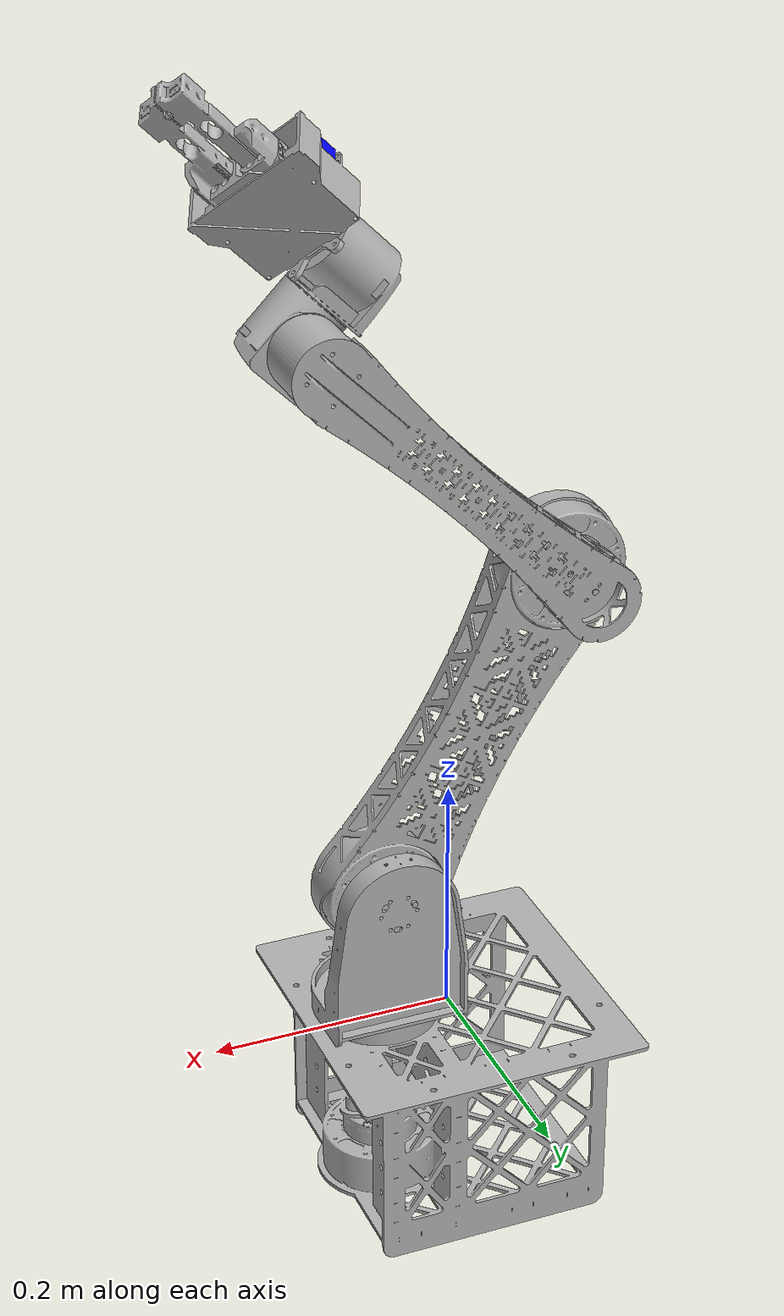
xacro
<?xml version="1.0"?>
<robot name="indomitus_arm" xmlns:xacro="http://www.ros.org/wiki/xacro">
  <!-- Arm-only assembly. The world root fixes the model in Gazebo. -->
  <xacro:arg name="end_effector" default="jaw"/>

  <xacro:include filename="$(find arm_description)/urdf/arm_macro.xacro"/>

  <link name="world"/>

  <xacro:indomitus_arm parent_link="world">
    <origin xyz="0 0 0" rpy="0 0 0"/>
  </xacro:indomitus_arm>

  <!-- Its controller_manager lives under /arm, same as on hardware, and
       reads robot_description from /arm/robot_state_publisher. -->
  <xacro:if value="$(arg sim)">
    <gazebo>
      <plugin filename="gz_ros2_control-system" name="gz_ros2_control::GazeboSimROS2ControlPlugin">
        <ros>
          <namespace>/arm</namespace>
        </ros>
        <parameters>$(find arm_sim)/config/ros2_controllers.yaml</parameters>
        <position_proportional_gain>0.3</position_proportional_gain>
      </plugin>
    </gazebo>
  </xacro:if>

</robot>

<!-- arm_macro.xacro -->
<robot xmlns:xacro="http://www.ros.org/wiki/xacro">

  <xacro:arg name="use_fake_hardware" default="true"/>
  <xacro:arg name="end_effector" default="jaw"/>
  <xacro:arg name="sim" default="false"/>
  <xacro:arg name="can_interface" default="can0"/>
  <xacro:arg name="standalone_gz_plugin" default="true"/>
  <!-- camera:=false drops the simulated camera sensor (the URDF link and
       frames stay). Camera rendering is the main real-time-factor cost
       when the GPU isn't doing the rendering. -->
  <xacro:arg name="camera" default="true"/>

  <xacro:macro name="indomitus_arm" params="parent_link *origin">

    <xacro:property name="mesh_path" value="package://arm_description/meshes"/>
    <xacro:property name="stl_scale" value="0.001 0.001 0.001"/>

    <material name="light_grey">
      <color rgba="0.7 0.7 0.7 1.0"/>
    </material>

    <xacro:macro name="dummy_inertia" params="mass">
      <inertial>
        <origin xyz="0 0 0" rpy="0 0 0"/>
        <mass value="${mass}"/>
        <inertia ixx="0.001" ixy="0.0" ixz="0.0" iyy="0.001" iyz="0.0" izz="0.001"/>
      </inertial>
    </xacro:macro>

    <joint name="arm_mount_joint" type="fixed">
      <xacro:insert_block name="origin" />
      <parent link="${parent_link}"/>
      <child link="arm_mount_link"/>
    </joint>

    <link name="arm_mount_link">
      <visual>
        <geometry><mesh filename="${mesh_path}/arm_mount_v2.stl" scale="${stl_scale}"/></geometry>
        <material name="light_grey"/>
      </visual>
      <collision>
        <geometry><mesh filename="${mesh_path}/arm_mount_v2.stl" scale="${stl_scale}"/></geometry>
      </collision>
      <xacro:dummy_inertia mass="1.0"/>
    </link>

    <joint name="arm_mount_base_joint" type="revolute">
      <parent link="arm_mount_link"/>
      <child link="arm_base_link"/>
      <origin xyz="0.06 0 0.021" rpy="0 0 ${-pi/2}"/>
      <axis xyz="0 0 1"/>
      <limit lower="${-pi}" upper="${0}" effort="100.0" velocity="1.0"/>
    </joint>

    <link name="arm_base_link">
      <visual>
        <geometry><mesh filename="${mesh_path}/arm_base_v2.stl" scale="${stl_scale}"/></geometry>
        <material name="light_grey"/>
      </visual>
      <collision>
        <geometry><mesh filename="${mesh_path}/arm_base_v2.stl" scale="${stl_scale}"/></geometry>
      </collision>
      <xacro:dummy_inertia mass="2.0"/>
    </link>

    <joint name="arm_base_shoulder_joint" type="revolute">
      <parent link="arm_base_link"/>
      <child link="arm_shoulder_link"/>
      <origin xyz="-0.040366 -0.000325 0.103" rpy="${pi/3} 0 ${-pi}"/>
      <axis xyz="1 0 0"/>
      <limit lower="${-20*pi/18}" upper="${20*pi/18}" effort="100.0" velocity="1.0"/>
    </joint>

    <link name="arm_shoulder_link">
      <visual>
        <geometry><mesh filename="${mesh_path}/arm_shoulder_v2.stl" scale="${stl_scale}"/></geometry>
        <material name="light_grey"/>
      </visual>
      <collision>
        <geometry><mesh filename="${mesh_path}/arm_shoulder_v2.stl" scale="${stl_scale}"/></geometry>
      </collision>
      <xacro:dummy_inertia mass="1.5"/>
    </link>

    <joint name="arm_shoulder_forearm_joint" type="revolute">
      <parent link="arm_shoulder_link"/>
      <child link="arm_forearm_link"/>
      <origin xyz="0 0.3 0" rpy="${5*pi/12} 0 0"/>
      <axis xyz="1 0 0"/>
      <limit lower="${-pi/2}" upper="${pi/2}" effort="100.0" velocity="1.0"/>
    </joint>

    <link name="arm_forearm_link">
      <visual>
        <geometry><mesh filename="${mesh_path}/arm_forearm_v2.stl" scale="${stl_scale}"/></geometry>
        <material name="light_grey"/>
      </visual>
      <collision>
        <geometry><mesh filename="${mesh_path}/arm_forearm_v2.stl" scale="${stl_scale}"/></geometry>
      </collision>
      <xacro:dummy_inertia mass="1.0"/>
    </link>

    <joint name="arm_forearm_wrist_1_joint" type="revolute">
      <parent link="arm_forearm_link"/>
      <child link="arm_wrist_1_link"/>
      <origin xyz="-0.0173 0.3 0" rpy="0 ${pi/2} 0"/>
      <axis xyz="0 0 1"/>
      <limit lower="${-20*pi/18}" upper="${20*pi/18}" effort="100.0" velocity="1.0"/>
    </joint>

    <link name="arm_wrist_1_link">
      <visual>
        <geometry><mesh filename="${mesh_path}/arm_wrist_v2.stl" scale="${stl_scale}"/></geometry>
        <material name="light_grey"/>
      </visual>
      <collision>
        <geometry><mesh filename="${mesh_path}/arm_wrist_v2.stl" scale="${stl_scale}"/></geometry>
      </collision>
      <xacro:dummy_inertia mass="0.5"/>
    </link>

    <joint name="arm_wrist_1_wrist_2_joint" type="revolute">
      <parent link="arm_wrist_1_link"/>
      <child link="arm_wrist_2_link"/>
      <origin xyz="0.0323 0 -0.035" rpy="${-pi/2} 0 ${pi/2}"/>
      <axis xyz="0 0 1"/>
      <limit lower="${-20*pi/18}" upper="${20*pi/18}" effort="100.0" velocity="1.0"/>
    </joint>

    <link name="arm_wrist_2_link">
      <visual>
        <geometry><mesh filename="${mesh_path}/arm_wrist_v2.stl" scale="${stl_scale}"/></geometry>
        <material name="light_grey"/>
      </visual>
      <collision>
        <geometry><mesh filename="${mesh_path}/arm_wrist_v2.stl" scale="${stl_scale}"/></geometry>
      </collision>
      <xacro:dummy_inertia mass="0.3"/>
    </link>

    <joint name="arm_wrist_2_end_effector_joint" type="revolute">
      <parent link="arm_wrist_2_link"/>
      <child link="arm_end_effector_link"/>
      <origin xyz="0.0323 0 -0.035" rpy="${-pi/2} ${pi/3} ${-pi/2}"/>
      <axis xyz="0 0 1"/>
      <limit lower="${-20*pi/18}" upper="${20*pi/18}" effort="100.0" velocity="1.0"/>
    </joint>

    <xacro:property name="drill_ee_tool_com_x" value="-0.03"/>
    <xacro:property name="drill_ee_tool_com_y" value="-0.08"/>
    <xacro:property name="drill_ee_tool_com_z" value="0.05"/>

    <xacro:property name="astrobio_ee_tool_mass_kg" value="0.4"/>
    <xacro:property name="astrobio_ee_tool_com_x" value="0.0"/>
    <xacro:property name="astrobio_ee_tool_com_y" value="0.0"/>
    <xacro:property name="astrobio_ee_tool_com_z" value="0.08"/>

    <link name="arm_end_effector_link">
      <xacro:if value="${('$(arg end_effector)' == 'jaw') or ('$(arg end_effector)' == 'astrobio')}">
        <visual>
          <geometry><mesh filename="${mesh_path}/arm_jaw_gripper_v3.stl" scale="${stl_scale}"/></geometry>
          <material name="light_grey"/>
        </visual>
        <collision>
          <geometry><mesh filename="${mesh_path}/arm_jaw_gripper_v3.stl" scale="${stl_scale}"/></geometry>
        </collision>
      </xacro:if>

      <xacro:if value="${'$(arg end_effector)' == 'other_tool'}">
      </xacro:if>

      <xacro:if value="${'$(arg end_effector)' == 'drill_sampling'}">
        <visual>
          <origin xyz="0 0 0.01" rpy="0 ${pi} ${pi/2}"/>
          <geometry><mesh filename="${mesh_path}/drill_sampling.stl" scale="${stl_scale}"/></geometry>
          <material name="light_grey"/>
        </visual>
        <collision>
          <origin xyz="0 0 0.01" rpy="0 ${pi} ${pi/2}"/>
          <geometry><mesh filename="${mesh_path}/drill_sampling.stl" scale="${stl_scale}"/></geometry>
        </collision>
      </xacro:if>

      <xacro:if value="${'$(arg end_effector)' == 'jaw'}">
        <xacro:dummy_inertia mass="0.2"/>
      </xacro:if>
      <xacro:if value="${'$(arg end_effector)' == 'drill_sampling'}">
        <xacro:dummy_inertia mass="2.6"/>
      </xacro:if>
      <xacro:if value="${'$(arg end_effector)' == 'other_tool'}">
        <xacro:dummy_inertia mass="0.2"/>
      </xacro:if>
      <xacro:if value="${'$(arg end_effector)' == 'astrobio'}">
        <xacro:dummy_inertia mass="${astrobio_ee_tool_mass_kg}"/>
      </xacro:if>
    </link>

    <xacro:if value="${'$(arg end_effector)' == 'jaw'}">
      <xacro:property name="finger_x_closed" value="0.01724"/>
      <xacro:property name="finger_stroke" value="0.012"/>
      <xacro:property name="finger_limit_epsilon" value="0.002"/>
      <xacro:property name="finger_z" value="0.0"/>
      <xacro:property name="finger_right_y" value="0.0"/>
      <xacro:property name="finger_left_y" value="0.0"/>

      <xacro:macro name="jaw_gripper_finger" params="side x_closed y yaw axis_sign limit_lower limit_upper">
        <joint name="arm_jaw_gripper_finger_${side}_joint" type="prismatic">
          <parent link="arm_end_effector_link"/>
          <child link="arm_jaw_gripper_finger_${side}_link"/>
          <origin xyz="${x_closed} ${y} ${finger_z}" rpy="0 0 ${yaw}"/>
          <axis xyz="${axis_sign} 0 0"/>
          <limit lower="${limit_lower}" upper="${limit_upper}" effort="20.0" velocity="0.05"/>
        </joint>

        <link name="arm_jaw_gripper_finger_${side}_link">
          <visual>
            <geometry><mesh filename="${mesh_path}/arm_jaw_gripper_finger_v3.stl" scale="${stl_scale}"/></geometry>
            <material name="light_grey"/>
          </visual>
          <collision>
            <geometry><mesh filename="${mesh_path}/arm_jaw_gripper_finger_v3.stl" scale="${stl_scale}"/></geometry>
          </collision>
          <xacro:dummy_inertia mass="0.05"/>
        </link>
      </xacro:macro>

      <xacro:jaw_gripper_finger side="right" x_closed="${finger_x_closed}"  y="${finger_right_y}" yaw="0"      axis_sign="-1" limit_lower="${-finger_limit_epsilon}" limit_upper="${finger_stroke + finger_limit_epsilon}"/>
      <xacro:jaw_gripper_finger side="left"  x_closed="${-finger_x_closed}" y="${finger_left_y}"  yaw="${pi}" axis_sign="1"  limit_lower="${-finger_stroke - finger_limit_epsilon}" limit_upper="${finger_limit_epsilon}"/>
    </xacro:if>

    <joint name="arm_tcp_joint" type="fixed">
      <parent link="arm_end_effector_link"/>
      <child link="arm_tcp_link"/>

      <xacro:if value="${('$(arg end_effector)' == 'jaw') or ('$(arg end_effector)' == 'drill_sampling') or ('$(arg end_effector)' == 'astrobio')}">
        <origin xyz="0 0 0.1615" rpy="0 0 0"/>
      </xacro:if>

      <xacro:if value="${('$(arg end_effector)' != 'jaw') and ('$(arg end_effector)' != 'drill_sampling') and ('$(arg end_effector)' != 'astrobio')}">
        <origin xyz="0 -0.23 0" rpy="0 0 0"/>
      </xacro:if>
    </joint>

    <link name="arm_tcp_link"/>

    <joint name="arm_camera_joint" type="fixed">
      <parent link="arm_end_effector_link"/>
      <child link="arm_camera_link"/>
      <origin xyz="0.00247 0.04672 0.02386" rpy="0 ${-pi/2} ${pi/2}"/>
    </joint>

    <link name="arm_camera_link">
      <visual>
        <geometry>
          <box size="0.035 0.035 0.05"/>
        </geometry>
        <material name="camera_blue">
          <color rgba="0.0 0.0 1.0 1.0"/>
        </material>
      </visual>

      <collision>
        <geometry>
          <box size="0.035 0.035 0.05"/>
        </geometry>
      </collision>
    </link>

    <joint name="arm_camera_optical_joint" type="fixed">
      <parent link="arm_camera_link"/>
      <child link="arm_camera_optical_frame"/>
      <origin xyz="0.0175 0 0" rpy="${pi/2} 0 ${pi/2}"/>
    </joint>

    <link name="arm_camera_optical_frame"/>

    <xacro:macro name="ee_tool_com_debug_marker" params="com_x com_y com_z">
      <joint name="arm_end_effector_com_debug_joint" type="fixed">
        <parent link="arm_end_effector_link"/>
        <child link="arm_end_effector_com_debug_link"/>
        <origin xyz="${com_x} ${com_y} ${com_z}" rpy="0 0 0"/>
      </joint>
      <link name="arm_end_effector_com_debug_link">
        <visual>
          <geometry><sphere radius="0.01"/></geometry>
          <material name="com_debug_red">
            <color rgba="1.0 0.0 0.0 1.0"/>
          </material>
        </visual>
      </link>
    </xacro:macro>

    <xacro:if value="${'$(arg end_effector)' == 'astrobio'}">
      <xacro:ee_tool_com_debug_marker
        com_x="${astrobio_ee_tool_com_x}" com_y="${astrobio_ee_tool_com_y}" com_z="${astrobio_ee_tool_com_z}"/>
    </xacro:if>
    <xacro:if value="${'$(arg end_effector)' == 'drill_sampling'}">
      <xacro:ee_tool_com_debug_marker
        com_x="${drill_ee_tool_com_x}" com_y="${drill_ee_tool_com_y}" com_z="${drill_ee_tool_com_z}"/>
    </xacro:if>

    <ros2_control name="ArmSystem" type="system">
      <hardware>
        <xacro:if value="$(arg sim)">
          <plugin>gz_ros2_control/GazeboSimSystem</plugin>
        </xacro:if>
        <xacro:unless value="$(arg sim)">
          <xacro:if value="$(arg use_fake_hardware)">
            <plugin>mock_components/GenericSystem</plugin>
          </xacro:if>
          <xacro:unless value="$(arg use_fake_hardware)">
            <plugin>arm_hardware_interface/ArmCanSystem</plugin>
            <param name="can_interface">$(arg can_interface)</param>
            <!-- Stiffness ramps 0 -> 100% over this many seconds after activation -->
            <param name="gain_ramp_secs">15.0</param>
            <!-- Hard rate limiter on outgoing position commands (rad/s) —
                 even a wrong/hostile command can't move a joint faster than this. -->
            <param name="max_cmd_speed_rad_s">1.0</param>
            <!-- Activation aborts if any motor is silent for this long -->
            <param name="feedback_timeout_secs">2.0</param>
            <param name="gravity_ff_enabled">true</param>
            <param name="gravity_ff_max_nm_steadywin">48.0</param>
            <param name="gravity_ff_max_nm_damiao">9.0</param>

            <xacro:if value="${'$(arg end_effector)' == 'astrobio'}">
              <param name="ee_tool_mass_kg">${astrobio_ee_tool_mass_kg}</param>
              <param name="ee_tool_com_x">${astrobio_ee_tool_com_x}</param>
              <param name="ee_tool_com_y">${astrobio_ee_tool_com_y}</param>
              <param name="ee_tool_com_z">${astrobio_ee_tool_com_z}</param>
            </xacro:if>
            <xacro:if value="${'$(arg end_effector)' == 'drill_sampling'}">
              <param name="ee_tool_mass_kg">2.8</param>
              <param name="ee_tool_com_x">${drill_ee_tool_com_x}</param>
              <param name="ee_tool_com_y">${drill_ee_tool_com_y}</param>
              <param name="ee_tool_com_z">${drill_ee_tool_com_z}</param>
            </xacro:if>
          </xacro:unless>
        </xacro:unless>
      </hardware>
      <xacro:macro name="arm_joint_control" params="joint_name motor_id direction offset kp kd">
        <joint name="${joint_name}">
          <command_interface name="position">
            <param name="min">${-pi}</param>
            <param name="max">${pi}</param>
          </command_interface>
          <command_interface name="velocity"/>
          <state_interface name="position"/>
          <state_interface name="velocity"/>
          <param name="motor_id">${motor_id}</param>
          <param name="direction">${direction}</param>
          <param name="offset">${offset}</param>
          <param name="kp">${kp}</param>
          <param name="kd">${kd}</param>
        </joint>
      </xacro:macro>

      <!-- MIT gains: protocol max kp=500, kd=5. Steadywin at ceiling to hold
           gravity; Damiao a step below to reduce wrist oscillation while stiff. -->
      <xacro:arm_joint_control joint_name="arm_mount_base_joint"          motor_id="20" direction="-1" offset="0.0"  kp="500.0" kd="5.0"/>
      <xacro:arm_joint_control joint_name="arm_base_shoulder_joint"       motor_id="21" direction="1"  offset="0.0"  kp="500.0" kd="5.0"/>
      <xacro:arm_joint_control joint_name="arm_shoulder_forearm_joint"    motor_id="22" direction="-1" offset="0.0"  kp="500.0" kd="5.0"/>
      <xacro:arm_joint_control joint_name="arm_forearm_wrist_1_joint"     motor_id="23" direction="-1" offset="0.0"  kp="400.0" kd="5.0"/>
      <xacro:arm_joint_control joint_name="arm_wrist_1_wrist_2_joint"     motor_id="24" direction="-1" offset="0.0"  kp="400.0" kd="5.0"/>
      <xacro:arm_joint_control joint_name="arm_wrist_2_end_effector_joint" motor_id="25" direction="1"  offset="0.0"  kp="350.0" kd="5.0"/>

      <xacro:if value="${('$(arg end_effector)' == 'jaw') and (('$(arg sim)' == 'true') or ('$(arg use_fake_hardware)' == 'true'))}">
        <joint name="arm_jaw_gripper_finger_right_joint">
          <command_interface name="position">
            <param name="min">${-finger_limit_epsilon}</param>
            <param name="max">${finger_stroke + finger_limit_epsilon}</param>
          </command_interface>
          <state_interface name="position"/>
          <state_interface name="velocity"/>
        </joint>
        <joint name="arm_jaw_gripper_finger_left_joint">
          <command_interface name="position">
            <param name="min">${-finger_stroke - finger_limit_epsilon}</param>
            <param name="max">${finger_limit_epsilon}</param>
          </command_interface>
          <state_interface name="position"/>
          <state_interface name="velocity"/>
        </joint>
      </xacro:if>
    </ros2_control>

    <xacro:if value="${('$(arg end_effector)' == 'jaw') and ('$(arg sim)' == 'false') and ('$(arg use_fake_hardware)' == 'false')}">
      <ros2_control name="JawGripperStub" type="system">
        <hardware>
          <plugin>mock_components/GenericSystem</plugin>
        </hardware>
        <joint name="arm_jaw_gripper_finger_right_joint">
          <command_interface name="position">
            <param name="min">0</param>
            <param name="max">${finger_stroke}</param>
          </command_interface>
          <state_interface name="position">
            <param name="initial_value">0.0</param>
          </state_interface>
          <state_interface name="velocity"/>
        </joint>
        <joint name="arm_jaw_gripper_finger_left_joint">
          <command_interface name="position">
            <param name="min">${-finger_stroke}</param>
            <param name="max">0</param>
          </command_interface>
          <state_interface name="position">
            <param name="initial_value">0.0</param>
          </state_interface>
          <state_interface name="velocity"/>
        </joint>
      </ros2_control>
    </xacro:if>

    <xacro:if value="$(arg sim)">
      <xacro:if value="$(arg standalone_gz_plugin)">
        <gazebo>
          <plugin filename="gz_ros2_control-system" name="gz_ros2_control::GazeboSimROS2ControlPlugin">
            <parameters>$(find arm_sim)/config/ros2_controllers.yaml</parameters>
          </plugin>
        </gazebo>
      </xacro:if>

      <gazebo reference="arm_mount_link">
        <visual>
          <material>
            <ambient>0.7 0.7 0.7 1.0</ambient>
            <diffuse>0.7 0.7 0.7 1.0</diffuse>
            <specular>0.3 0.3 0.3 1.0</specular>
          </material>
        </visual>
      </gazebo>

      <gazebo reference="arm_base_link">
        <visual>
          <material>
            <ambient>0.7 0.7 0.7 1.0</ambient>
            <diffuse>0.7 0.7 0.7 1.0</diffuse>
            <specular>0.3 0.3 0.3 1.0</specular>
          </material>
        </visual>
      </gazebo>

      <gazebo reference="arm_shoulder_link">
        <visual>
          <material>
            <ambient>0.7 0.7 0.7 1.0</ambient>
            <diffuse>0.7 0.7 0.7 1.0</diffuse>
            <specular>0.3 0.3 0.3 1.0</specular>
          </material>
        </visual>
      </gazebo>

      <gazebo reference="arm_forearm_link">
        <visual>
          <material>
            <ambient>0.7 0.7 0.7 1.0</ambient>
            <diffuse>0.7 0.7 0.7 1.0</diffuse>
            <specular>0.3 0.3 0.3 1.0</specular>
          </material>
        </visual>
      </gazebo>

      <gazebo reference="arm_wrist_1_link">
        <visual>
          <material>
            <ambient>0.7 0.7 0.7 1.0</ambient>
            <diffuse>0.7 0.7 0.7 1.0</diffuse>
            <specular>0.3 0.3 0.3 1.0</specular>
          </material>
        </visual>
      </gazebo>

      <gazebo reference="arm_wrist_2_link">
        <visual>
          <material>
            <ambient>0.7 0.7 0.7 1.0</ambient>
            <diffuse>0.7 0.7 0.7 1.0</diffuse>
            <specular>0.3 0.3 0.3 1.0</specular>
          </material>
        </visual>
      </gazebo>

      <gazebo reference="arm_end_effector_link">
        <visual>
          <material>
            <ambient>0.7 0.7 0.7 1.0</ambient>
            <diffuse>0.7 0.7 0.7 1.0</diffuse>
            <specular>0.3 0.3 0.3 1.0</specular>
          </material>
        </visual>
      </gazebo>

      <xacro:if value="${'$(arg end_effector)' == 'jaw'}">
        <gazebo reference="arm_jaw_gripper_finger_right_link">
          <visual>
            <material>
              <ambient>0.7 0.7 0.7 1.0</ambient>
              <diffuse>0.7 0.7 0.7 1.0</diffuse>
              <specular>0.3 0.3 0.3 1.0</specular>
            </material>
          </visual>
          <!-- Distinct bitmasks (0x01/0x02) exclude only this pair from
               colliding with each other; both keep the default 0xff
               against everything else (grasped object, environment). -->
          <collision>
            <surface>
              <contact>
                <collide_bitmask>0x01</collide_bitmask>
              </contact>
            </surface>
          </collision>
        </gazebo>

        <gazebo reference="arm_jaw_gripper_finger_left_link">
          <visual>
            <material>
              <ambient>0.7 0.7 0.7 1.0</ambient>
              <diffuse>0.7 0.7 0.7 1.0</diffuse>
              <specular>0.3 0.3 0.3 1.0</specular>
            </material>
          </visual>
          <!-- See arm_jaw_gripper_finger_right_link above: excludes this
               pair from each other (0x01 & 0x02 = 0) only. -->
          <collision>
            <surface>
              <contact>
                <collide_bitmask>0x02</collide_bitmask>
              </contact>
            </surface>
          </collision>
        </gazebo>
      </xacro:if>

      <xacro:if value="$(arg camera)">
      <gazebo reference="arm_camera_link">
        <sensor name="arm_camera" type="camera">
          <pose>0.0175 0 0 3.14159265 0 0</pose>
          <camera>
            <optical_frame_id>arm_camera_optical_frame</optical_frame_id>
            <horizontal_fov>1.047</horizontal_fov>
            <image>
              <width>640</width>
              <height>480</height>
              <format>R8G8B8</format>
            </image>
            <clip>
              <near>0.05</near>
              <far>15</far>
            </clip>
          </camera>
          <always_on>1</always_on>
          <update_rate>30</update_rate>
          <visualize>true</visualize>
          <topic>arm_camera/image_raw</topic>
        </sensor>
      </gazebo>
      </xacro:if>
    </xacro:if>

  </xacro:macro>
</robot>
